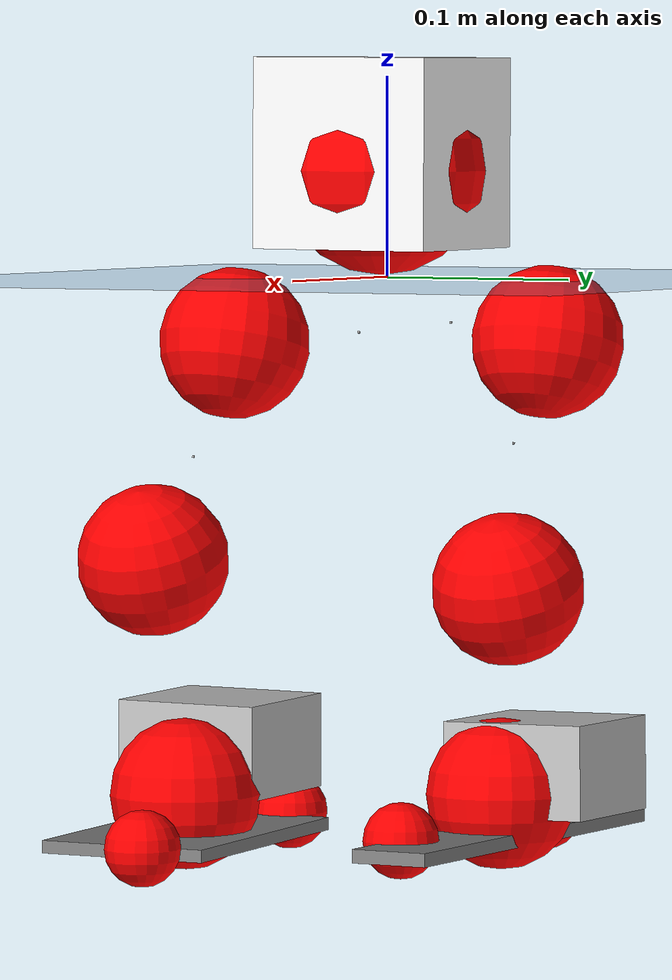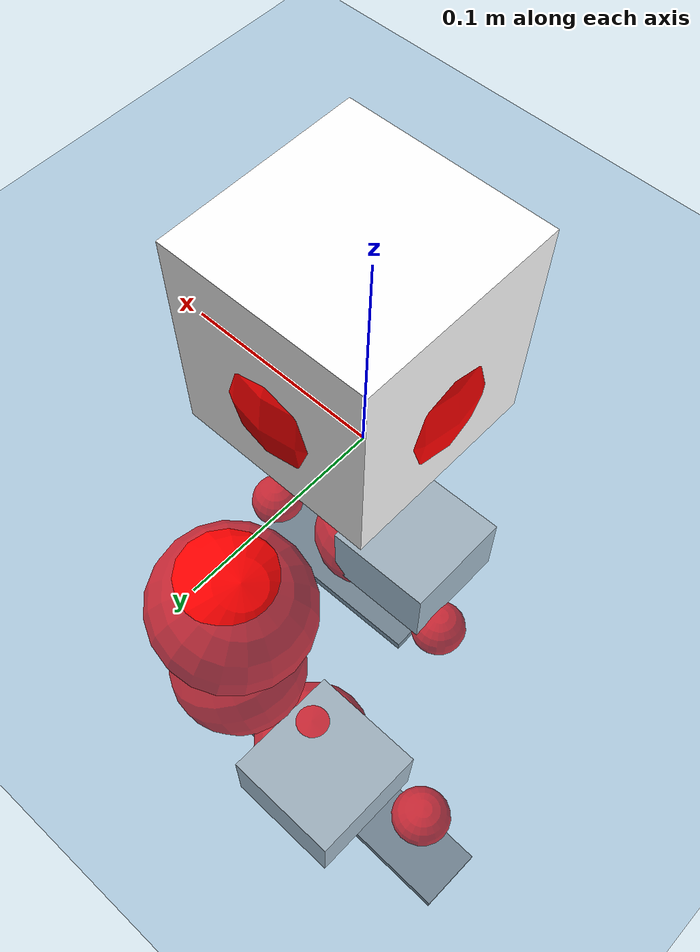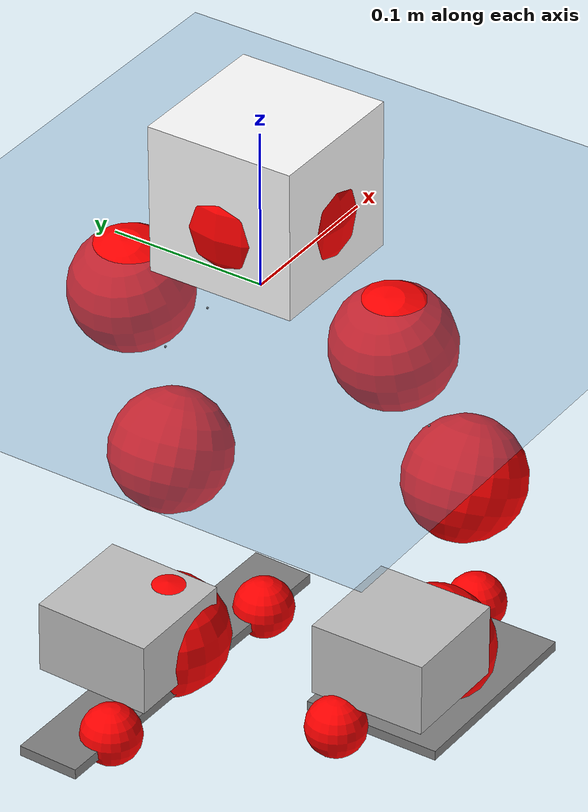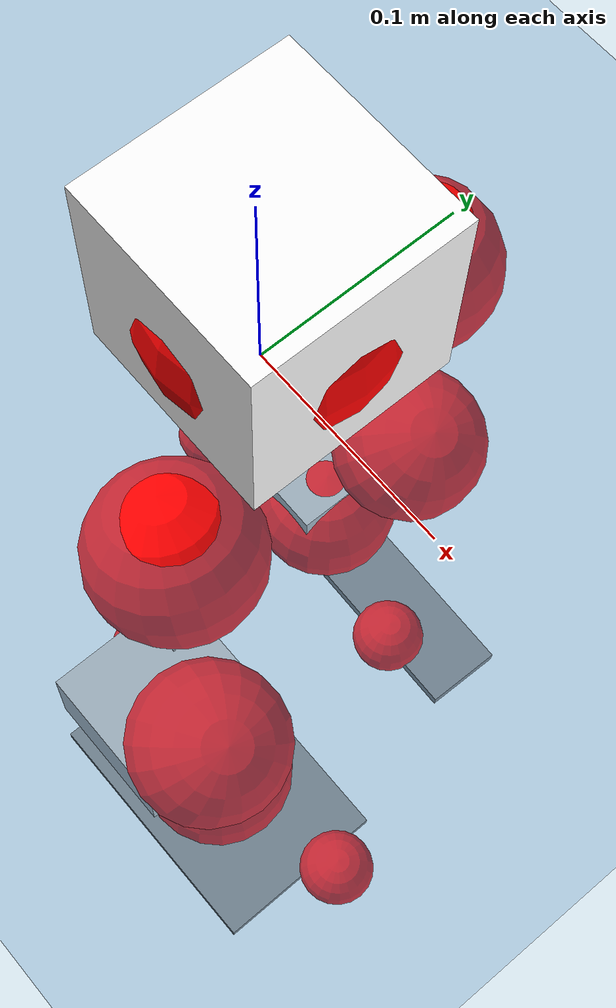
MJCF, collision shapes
<mujoco model="pi_12dof_release_v1">
  <compiler angle="radian" assetdir="assets" balanceinertia="true" inertiafromgeom="false"/>

  <option timestep="0.005" density="1.2" viscosity="2e-05"/>

  <size nkey="1"/>

  <visual>
    <quality shadowsize="8192"/>
    <map shadowclip="0.5"/>
  </visual>

  <default>
    <default class="/">
      <joint armature="0.01" damping="0.01" frictionloss="0.01"/>
      <geom contype="0" conaffinity="0" group="1" solref="-1000 -80"/>
      <site size="0.01 0.005 0.005" group="5"/>
      <general forcelimited="true" biastype="affine" gainprm="20" biasprm="0 -20 -0.5"/>
      <default class="foot">
        <geom size="0.0845 0.036 0.005" type="box" condim="6" group="4" priority="1" friction="0.9 0.2 0.2" solimp="0.015 1 0.005"/>
      </default>
      <default class="reward_collision_sphere">
        <geom group="5" rgba="1 0 0 1"/>
      </default>
    </default>
  </default>

  <asset>
    <texture type="skybox" colorspace="auto" name="//unnamed_texture_0" builtin="gradient" rgb1="0.95 0.95 0.95" rgb2="0.95 0.95 0.95" width="100" height="600"/>
    <texture type="2d" colorspace="auto" name="texplane" builtin="checker" rgb1="0.345 0.575 0.748" rgb2="0.345 0.575 0.748" markrgb="1 1 1" width="512" height="512"/>
    <material name="MatPlane" class="/" texture="texplane" texuniform="true" texrepeat="2 2" specular="0.9"/>
    <mesh name="baselink_1" class="/" file="baselink_1.STL"/>
    <mesh name="r_hip_pitch_link" class="/" file="r_hip_pitch_link.STL"/>
    <mesh name="r_hip_roll_link" class="/" file="r_hip_roll_link.STL"/>
    <mesh name="r_thigh_link" class="/" file="r_thigh_link.STL"/>
    <mesh name="r_calf_link" class="/" file="r_calf_link.STL"/>
    <mesh name="r_ankle_pitch_link" class="/" file="r_ankle_pitch_link.STL"/>
    <mesh name="r_ankle_roll_link" class="/" file="r_ankle_roll_link.STL"/>
    <mesh name="l_hip_pitch_link" class="/" file="l_hip_pitch_link.STL"/>
    <mesh name="l_hip_roll_link" class="/" file="l_hip_roll_link.STL"/>
    <mesh name="l_thigh_link" class="/" file="l_thigh_link.STL"/>
    <mesh name="l_calf_link" class="/" file="l_calf_link.STL"/>
    <mesh name="l_ankle_pitch_link" class="/" file="l_ankle_pitch_link.STL"/>
    <mesh name="l_ankle_roll_link" class="/" file="l_ankle_roll_link.STL"/>
  </asset>

  <worldbody>
    <geom name="floor" class="/" size="100 100 0.125" type="plane" group="0" material="MatPlane"/>
    <light name="toplight_shadow" class="/" pos="0 0 5" dir="0.0990148 0.0990148 -0.990148" type="directional" ambient="0.04 0.04 0.04" diffuse="0.55 0.55 0.55" specular="0.12 0.12 0.12"/>
    <light name="toplight_fill" class="/" pos="0 0 5" dir="0.0990148 0.0990148 -0.990148" type="directional" castshadow="false" ambient="0.04 0.04 0.04" diffuse="0.3 0.3 0.3" specular="0.08 0.08 0.08"/>
    <body name="trunk" pos="0.00630554 -0.000121343 -0.00761988" quat="0.99999 -0.00371887 0.0021857 -0.00108233">
      <inertial pos="0.0202679 0.0143216 0.0437792" quat="0.694792 -0.0183057 0.00318533 0.718971" mass="1.40805" diaginertia="0.0180877 0.0034365 0.00186863"/>
      <joint name="//unnamed_joint_0" type="free"/>
      <geom name="//unnamed_geom_1" class="/" type="mesh" density="0" rgba="1 1 1 1" mesh="baselink_1"/>
      <geom name="//unnamed_geom_2" class="/" size="0.0473195 0.0473195 0.0473195" pos="0 0 0.0696267" type="box" rgba="1 1 1 1"/>
      <geom name="//unnamed_geom_3" class="reward_collision_sphere" size="0.0520514" pos="0 0 0.0609233"/>
      <site name="imu" class="/" pos="-0.0777299 -0.00323145 0.0774493" size="0.00946389"/>
      <camera name="track" class="/" pos="0 -1.65589 0" quat="0.707107 0.707107 0 0" mode="trackcom"/>
      <camera name="ego_camera" class="/" pos="0.0855667 0 0.15666" quat="-0.5 -0.5 0.5 0.5"/>
      <body name="r_hip_pitch_link" pos="0.0128248 -0.00587288 -0.0193583" quat="0.992392 7.91725e-05 -0.123106 -0.00140018">
        <inertial pos="0.00148573 -0.0330102 0.00301967" quat="-0.018729 0.704922 -0.028869 0.708449" mass="0.335854" diaginertia="0.000251545 5.43284e-05 5.06085e-05"/>
        <joint name="r_hip_pitch_joint" class="/" pos="0 0 0" axis="0.0282632 -0.999164 -0.0295494" range="-1.81064 1.57255" armature="0.0164052" damping="0.0380882" frictionloss="0.0135176"/>
        <geom name="//unnamed_geom_4" class="/" type="mesh" density="0" rgba="0.75294 0.75294 0.75294 1" mesh="r_hip_pitch_link"/>
        <geom name="//unnamed_geom_5" class="/" size="0.000473195 0.000473195 0.000473195" type="box" rgba="0.75294 0.75294 0.75294 1"/>
        <body name="r_hip_roll_link" pos="0.0105594 -0.063358 -0.0092411" quat="0.999972 -0.00682158 0.00177814 -0.00245869">
          <inertial pos="-0.00415945 -0.000355962 -0.0629979" quat="0.726986 -0.132731 -0.0788173 0.669075" mass="0.394428" diaginertia="0.00067018 0.000136401 6.09865e-05"/>
          <joint name="r_hip_roll_joint" class="/" pos="0 0 0" axis="-0.998103 0.0609995 -0.00830317" stiffness="0.0109339" range="-0.19904 0.444123" armature="0.0143759" damping="0.0788971" frictionloss="0.00190339"/>
          <geom name="//unnamed_geom_6" class="/" type="mesh" density="0" rgba="0.75294 0.75294 0.75294 1" mesh="r_hip_roll_link"/>
          <geom name="//unnamed_geom_7" class="/" size="0.000473195 0.000473195 0.000473195" type="box" rgba="0.75294 0.75294 0.75294 1"/>
          <geom name="//unnamed_geom_8" class="reward_collision_sphere" size="0.0378556"/>
          <body name="r_thigh_link" pos="-0.000104975 -0.0148576 -0.0584213" quat="0.999996 0.00220144 0.00195469 6.47458e-05">
            <inertial pos="0.00100624 -0.00449094 -0.032134" quat="0.736469 0.676431 -0.00743602 0.000707567" mass="0.100549" diaginertia="0.000300814 3.73908e-05 2.86031e-05"/>
            <joint name="r_thigh_joint" class="/" pos="0 0 0" axis="-0.0208381 0.0117709 -0.999714" range="-0.0580638 0.688285" armature="0.00122476" damping="0.036618" frictionloss="0.00493525"/>
            <geom name="//unnamed_geom_9" class="/" type="mesh" density="0" rgba="0.75294 0.75294 0.75294 1" mesh="r_thigh_link"/>
            <geom name="//unnamed_geom_10" class="/" size="0.000473195 0.000473195 0.000473195" type="box" rgba="0.75294 0.75294 0.75294 1"/>
            <body name="r_calf_link" pos="0.0158897 -0.00608299 -0.0555183" quat="0.947633 -0.00015527 0.319361 -3.14719e-05">
              <inertial pos="0.0107989 0.0167897 -0.0492713" quat="0.996355 0.0142998 -0.0678696 0.0496631" mass="0.6735" diaginertia="0.00745702 0.00103363 9.4901e-05"/>
              <joint name="r_calf_joint" class="/" pos="0 0 0" axis="-0.0263922 -0.998285 0.0522537" range="-1.65888 0.47881" armature="0.0143593" damping="0.0384128" frictionloss="0.00797068"/>
              <geom name="//unnamed_geom_11" class="/" type="mesh" density="0" rgba="0.75294 0.75294 0.75294 1" mesh="r_calf_link"/>
              <geom name="//unnamed_geom_12" class="/" size="0.000473195 0.000473195 0.000473195" type="box" rgba="0.75294 0.75294 0.75294 1"/>
              <geom name="//unnamed_geom_13" class="reward_collision_sphere" size="0.0378556"/>
              <body name="r_ankle_pitch_link" pos="-0.00992796 0.00987105 -0.10799" quat="0.980638 1.36011e-05 -0.195729 0.00625231">
                <inertial pos="-0.0102941 0.0098598 0.01033" quat="0.000615589 0.669524 -0.013772 0.742662" mass="0.13279" diaginertia="0.000721352 0.000107745 5.1285e-05"/>
                <joint name="r_ankle_pitch_joint" class="/" pos="0 0 0" axis="0.0558848 -0.998289 0.0172077" stiffness="0.0601528" range="-1.58999 0.27095" armature="0.00464732" damping="0.0744484" frictionloss="0.011138"/>
                <geom name="//unnamed_geom_14" class="/" type="mesh" density="0" rgba="0.75294 0.75294 0.75294 1" mesh="r_ankle_pitch_link"/>
                <geom name="//unnamed_geom_15" class="/" size="0.0369092 0.0378556 0.0236597" type="box" rgba="0.75294 0.75294 0.75294 1"/>
                <body name="r_ankle_roll_link" pos="0.0964616 0.00186239 -0.0040962" quat="0.999987 0.00360856 0.00326029 0.00178773">
                  <inertial pos="-0.0143046 0.00109928 -0.0123446" quat="0.580074 0.355625 0.458978 0.571301" mass="0.319257" diaginertia="0.00163643 0.000373419 0.000117485"/>
                  <joint name="r_ankle_roll_joint" class="/" pos="0 0 0" axis="-0.998742 0.000456173 0.0501504" stiffness="0.0143343" range="-0.37776 0.124727" armature="0.00191345" damping="0" frictionloss="0.00643277"/>
                  <geom name="//unnamed_geom_16" class="/" type="mesh" density="0" rgba="0.75294 0.75294 0.75294 1" mesh="r_ankle_roll_link"/>
                  <geom name="//unnamed_geom_17" class="/" type="mesh" rgba="0.75294 0.75294 0.75294 1" mesh="r_ankle_roll_link"/>
                  <geom name="right_foot" class="foot" size="0.0669981 0.0445039 0.00316778" pos="-0.0581853 0 -0.0382947"/>
                  <geom name="//unnamed_geom_19" class="reward_collision_sphere" size="0.0378556" pos="-0.0570444 0 -0.0174067"/>
                  <geom name="//unnamed_geom_20" class="reward_collision_sphere" size="0.0189278" pos="0.0171133 0.0165589 -0.0348133"/>
                  <geom name="//unnamed_geom_21" class="reward_collision_sphere" size="0.0189278" pos="-0.136907 0.0165589 -0.0348133"/>
                  <site name="right_foot" class="foot" pos="-0.0581853 0 -0.0382947" size="0.00946389"/>
                </body>
              </body>
            </body>
          </body>
        </body>
      </body>
      <body name="l_hip_pitch_link" pos="-0.0147093 0.0312152 -0.0145624" quat="0.992235 0.000986306 -0.124375 -0.000365018">
        <inertial pos="0.000275 0.0332497 0.0160551" quat="-0.0145921 0.713779 -0.0313463 0.699517" mass="0.265293" diaginertia="0.000154495 3.50858e-05 4.53116e-05"/>
        <joint name="l_hip_pitch_joint" class="/" pos="0 0 0" axis="0.00990591 0.999943 0.00405957" stiffness="0.0575014" range="-1.34555 1.7496" armature="0.00845231" damping="0" frictionloss="0.0149439"/>
        <geom name="//unnamed_geom_22" class="/" type="mesh" density="0" rgba="0.75294 0.75294 0.75294 1" mesh="l_hip_pitch_link"/>
        <geom name="//unnamed_geom_23" class="/" size="0.000473195 0.000473195 0.000473195" type="box" rgba="0.75294 0.75294 0.75294 1"/>
        <body name="l_hip_roll_link" pos="0.00179999 0.0555956 -0.00888594" quat="0.999992 0.00100136 -0.00245402 -0.00296527">
          <inertial pos="0.0151138 -0.00726368 -0.0366392" quat="0.701016 -0.0709352 -0.07541 0.70559" mass="0.418448" diaginertia="0.000897688 0.000105617 6.64951e-05"/>
          <joint name="l_hip_roll_joint" class="/" pos="0 0 0" axis="-0.999555 0.0278896 0.0105749" stiffness="0.011041" range="-0.652222 0.226289" armature="0.0122867" damping="0" frictionloss="0.0143535"/>
          <geom name="//unnamed_geom_24" class="/" type="mesh" density="0" rgba="0.75294 0.75294 0.75294 1" mesh="l_hip_roll_link"/>
          <geom name="//unnamed_geom_25" class="/" size="0.000473195 0.000473195 0.000473195" type="box" rgba="0.75294 0.75294 0.75294 1"/>
          <geom name="//unnamed_geom_26" class="reward_collision_sphere" size="0.0378556"/>
          <body name="l_thigh_link" pos="0.00825431 -0.00801465 -0.053102" quat="1 -0.000185329 -0.000415476 4.44061e-05">
            <inertial pos="-0.0096748 -0.0155711 -0.0341005" quat="0.681758 0.729556 0.0543079 0.00219107" mass="0.0741901" diaginertia="0.000215712 2.35635e-05 2.05609e-05"/>
            <joint name="l_thigh_joint" class="/" pos="0 0 0" axis="0.015746 0.00811903 -0.999843" stiffness="0.070668" range="-0.28306 0.5143" armature="0.00629629" damping="0" frictionloss="0.00883689"/>
            <geom name="//unnamed_geom_27" class="/" type="mesh" density="0" rgba="0.75294 0.75294 0.75294 1" mesh="l_thigh_link"/>
            <geom name="//unnamed_geom_28" class="/" size="0.000473195 0.000473195 0.000473195" type="box" rgba="0.75294 0.75294 0.75294 1"/>
            <body name="l_calf_link" pos="-0.0175209 -0.00262819 -0.0696154" quat="0.947436 -0.00059579 0.319944 -0.00109373">
              <inertial pos="0.0109638 -0.00681535 -0.0445217" quat="0.995946 0.0157545 -0.0882692 0.0071583" mass="0.693914" diaginertia="0.00826533 0.00162675 0.000105598"/>
              <joint name="l_calf_joint" class="/" pos="0 0 0" axis="0.042599 0.997783 -0.0511237" range="-0.628077 1.49684" armature="0.00822248" damping="0.0647878" frictionloss="0.00571931"/>
              <geom name="//unnamed_geom_29" class="/" type="mesh" density="0" rgba="0.75294 0.75294 0.75294 1" mesh="l_calf_link"/>
              <geom name="//unnamed_geom_30" class="/" size="0.000473195 0.000473195 0.000473195" type="box" rgba="0.75294 0.75294 0.75294 1"/>
              <geom name="//unnamed_geom_31" class="reward_collision_sphere" size="0.0378556"/>
              <body name="l_ankle_pitch_link" pos="-0.0163855 -0.00762501 -0.107099" quat="0.980021 0.00692779 -0.198772 -0.00037354">
                <inertial pos="0.0033089 -0.0112123 -0.00598596" quat="-0.00222977 0.707315 0.00222798 0.706891" mass="0.196624" diaginertia="0.000784979 0.000102249 7.1666e-05"/>
                <joint name="l_ankle_pitch_joint" class="/" pos="0 0 0" axis="0.00642609 0.999978 0.00156617" stiffness="0.00588764" range="-0.307171 1.52901" armature="0.0142572" damping="0.00156268" frictionloss="0.00542547"/>
                <geom name="//unnamed_geom_32" class="/" type="mesh" density="0" rgba="0.75294 0.75294 0.75294 1" mesh="l_ankle_pitch_link"/>
                <geom name="//unnamed_geom_33" class="/" size="0.0369092 0.0378556 0.0236597" type="box" rgba="0.75294 0.75294 0.75294 1"/>
                <body name="l_ankle_roll_link" pos="0.0799512 -0.013346 0.00468423" quat="0.99997 -0.0055129 0.00150736 -0.00527581">
                  <inertial pos="-0.0406871 0.00903424 -0.0191866" quat="0.512504 0.470619 0.451443 0.558621" mass="0.415117" diaginertia="0.00249706 0.0003948 0.000157943"/>
                  <joint name="l_ankle_roll_joint" class="/" pos="0 0 0" axis="-0.999999 0.00140955 0.00045069" stiffness="0.0770079" range="-0.434745 0.3872" armature="0.00251427" damping="0" frictionloss="0.00522785"/>
                  <geom name="//unnamed_geom_34" class="/" type="mesh" density="0" rgba="0.75294 0.75294 0.75294 1" mesh="l_ankle_roll_link"/>
                  <geom name="//unnamed_geom_35" class="/" type="mesh" rgba="0.75294 0.75294 0.75294 1" mesh="l_ankle_roll_link"/>
                  <geom name="left_foot" class="foot" size="0.118496 0.0199849 0.0033963" pos="-0.0581853 0 -0.0382947"/>
                  <geom name="//unnamed_geom_37" class="reward_collision_sphere" size="0.0378556" pos="-0.0570444 0 -0.0174067"/>
                  <geom name="//unnamed_geom_38" class="reward_collision_sphere" size="0.0189278" pos="0.0171133 -0.0165589 -0.0348133"/>
                  <geom name="//unnamed_geom_39" class="reward_collision_sphere" size="0.0189278" pos="-0.136907 -0.0165589 -0.0348133"/>
                  <site name="left_foot" class="foot" pos="-0.0581853 0 -0.0382947" size="0.00946389"/>
                </body>
              </body>
            </body>
          </body>
        </body>
      </body>
    </body>
  </worldbody>

  <contact>
    <pair class="/" geom1="floor" geom2="right_foot" name="//unnamed_contact_1"/>
    <pair class="/" geom1="floor" geom2="left_foot" name="//unnamed_contact_0"/>
  </contact>

  <actuator>
    <general name="r_hip_pitch_joint" class="/" joint="r_hip_pitch_joint" forcerange="-9.95869 9.95869" gainprm="27.3101" biasprm="0 -27.3101 -0.487384"/>
    <general name="r_hip_roll_joint" class="/" joint="r_hip_roll_joint" forcerange="-19.7725 19.7725" gainprm="27.3101" biasprm="0 -27.3101 -0.487384"/>
    <general name="r_thigh_joint" class="/" joint="r_thigh_joint" forcerange="-17.6235 17.6235" gainprm="27.3101" biasprm="0 -27.3101 -0.487384"/>
    <general name="r_calf_joint" class="/" joint="r_calf_joint" forcerange="-8.46867 8.46867" gainprm="27.3101" biasprm="0 -27.3101 -0.487384"/>
    <general name="r_ankle_pitch_joint" class="/" joint="r_ankle_pitch_joint" forcerange="-16.1681 16.1681" gainprm="27.3101" biasprm="0 -27.3101 -0.487384"/>
    <general name="r_ankle_roll_joint" class="/" joint="r_ankle_roll_joint" forcerange="-22.6443 22.6443" gainprm="27.3101" biasprm="0 -27.3101 -0.487384"/>
    <general name="l_hip_pitch_joint" class="/" joint="l_hip_pitch_joint" forcerange="-29.5738 29.5738" gainprm="27.3101" biasprm="0 -27.3101 -0.487384"/>
    <general name="l_hip_roll_joint" class="/" joint="l_hip_roll_joint" forcerange="-31.8784 31.8784" gainprm="27.3101" biasprm="0 -27.3101 -0.487384"/>
    <general name="l_thigh_joint" class="/" joint="l_thigh_joint" forcerange="-25.4395 25.4395" gainprm="27.3101" biasprm="0 -27.3101 -0.487384"/>
    <general name="l_calf_joint" class="/" joint="l_calf_joint" forcerange="-18.6127 18.6127" gainprm="27.3101" biasprm="0 -27.3101 -0.487384"/>
    <general name="l_ankle_pitch_joint" class="/" joint="l_ankle_pitch_joint" forcerange="-10.8941 10.8941" gainprm="27.3101" biasprm="0 -27.3101 -0.487384"/>
    <general name="l_ankle_roll_joint" class="/" joint="l_ankle_roll_joint" forcerange="-23.8469 23.8469" gainprm="27.3101" biasprm="0 -27.3101 -0.487384"/>
  </actuator>

  <sensor>
    <gyro site="imu" name="imu_angular_velocity"/>
    <velocimeter site="imu" name="imu_linear_velocity"/>
    <framelinvel objtype="site" objname="left_foot" name="left_foot_global_linear_velocity"/>
    <framelinvel objtype="site" objname="right_foot" name="right_foot_global_linear_velocity"/>
  </sensor>

  <keyframe>
    <key name="home" qpos="0 0 0.291 1 0 0 0 0.4 0 0 -0.8 0.4 0 -0.4 0 0 0.8 -0.4 0"/>
  </keyframe>
</mujoco>
